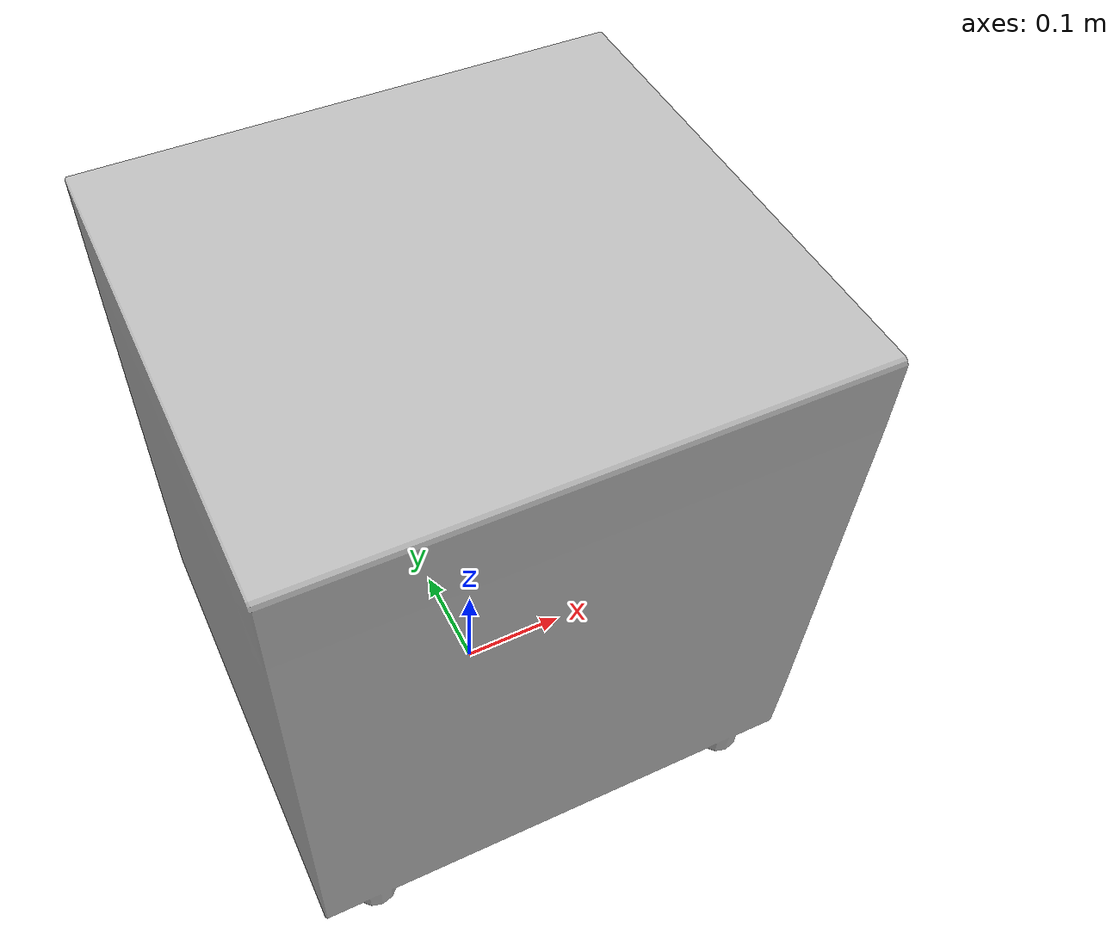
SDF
<?xml version='1.0'?>
<sdf version='1.4'>
  <model name='318'>
    <pose>0 0 0 0 0 0</pose>
    <static>true</static>
    <link name='link'>
      <collision name='collision'>
        <pose>0 0 0 0 0 0</pose>
        <geometry>
          <box>
            <size>0.465592 0.42 2</size>
          </box>
        </geometry>
      </collision>
      <visual name='visual'>
        <pose>0 0 0 0 0 0</pose>
        <geometry>
          <mesh><uri>model://318/318.dae</uri></mesh>
        </geometry>
      </visual>
    </link>
  </model>
</sdf>
